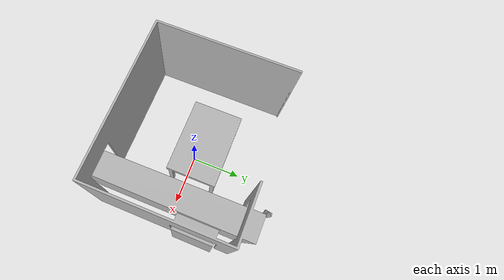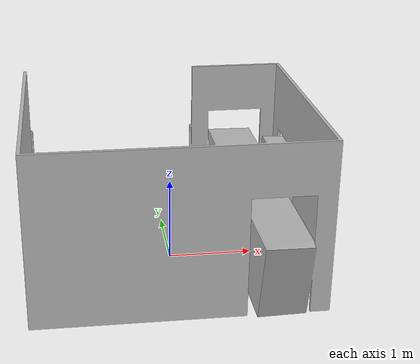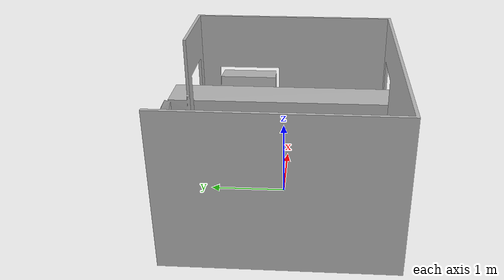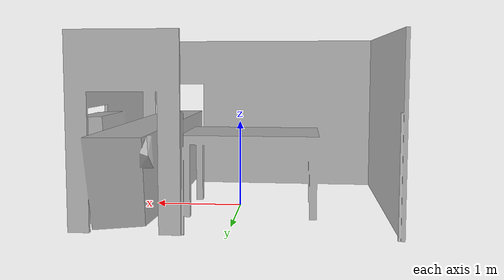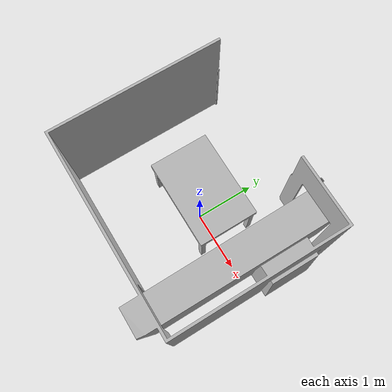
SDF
<?xml version="1.0" ?>
<sdf version="1.6">
  <model name="DigilabIiwaCell">
    <static>true</static>
    <link name="cell_link">
      <visual name="visual">
        <geometry>
          <mesh>
            <uri>model://DigilabIiwaCell/meshes/DigilabIiwaCell.dae</uri>
          </mesh>
        </geometry>
      </visual>
      <collision name="collision">
        <geometry>
          <mesh>
            <uri>model://DigilabIiwaCell/meshes/DigilabIiwaCell.stl</uri>
          </mesh>
        </geometry>
      </collision>
    </link>
  </model>
</sdf>
